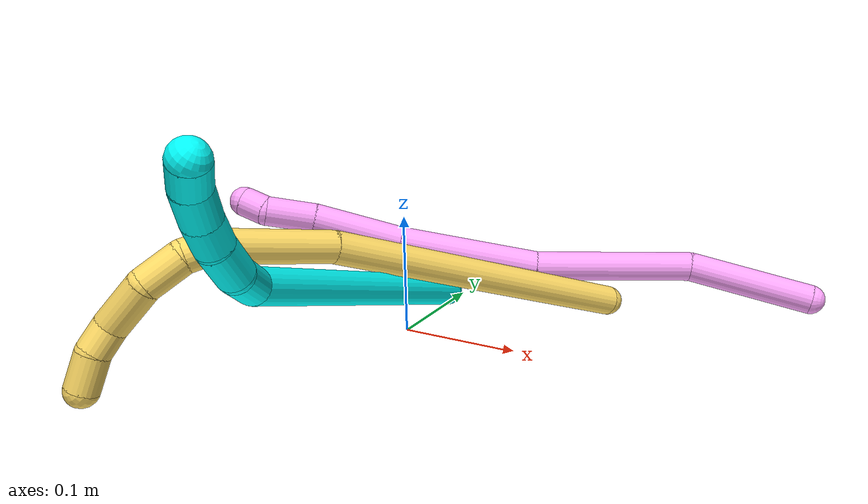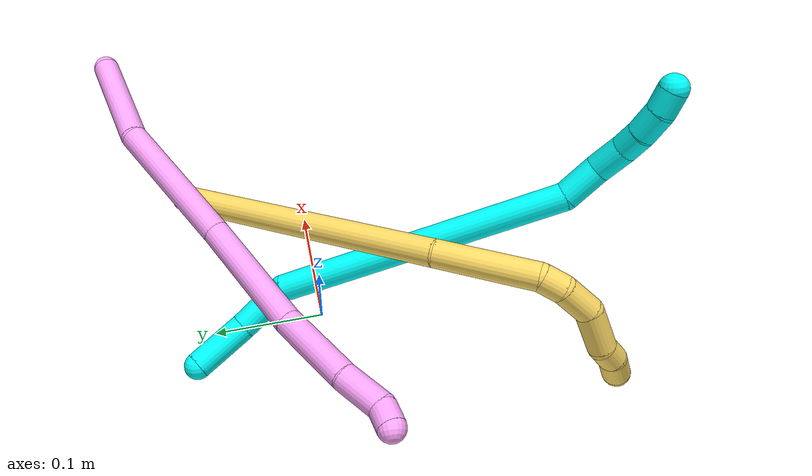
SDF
<sdf version="1.7">
 <world name="default">
  <model name="3">
   <static>0</static>
   <link name="3">
    <collision name="collision-cylinder-e_1_1_4">
     <pose>0.022848 -0.009292 0.010523 0.723326 1.01983 0.416982</pose>
     <geometry><cylinder><radius>0.0125</radius><length>0.053631</length></cylinder></geometry>
     <surface>
      <friction><ode><mu>1.16</mu><mu2>1.16</mu2><slip1>0</slip1><slip2>0</slip2></ode></friction>
      <contact><ode><kp>1e+06</kp><kd>1</kd><max_vel>0</max_vel><min_depth>0.001</min_depth></ode></contact>
     </surface>
    </collision>
    <visual name="visual-cylinder-e_1_1_4">
     <pose>0.022848 -0.009292 0.010523 0.723326 1.01983 0.416982</pose>
     <geometry><cylinder><radius>0.0125</radius><length>0.053631</length></cylinder></geometry>
     <material><ambient>0.003922 1 0.996078 1</ambient></material>
    </visual>
    <collision name="collision-cylinder-e_2_4_5">
     <pose>0.062812 -0.03068 0.035304 0.70361 0.741285 0.283381</pose>
     <geometry><cylinder><radius>0.0125</radius><length>0.050699</length></cylinder></geometry>
     <surface>
      <friction><ode><mu>1.16</mu><mu2>1.16</mu2><slip1>0</slip1><slip2>0</slip2></ode></friction>
      <contact><ode><kp>1e+06</kp><kd>1</kd><max_vel>0</max_vel><min_depth>0.001</min_depth></ode></contact>
     </surface>
    </collision>
    <visual name="visual-cylinder-e_2_4_5">
     <pose>0.062812 -0.03068 0.035304 0.70361 0.741285 0.283381</pose>
     <geometry><cylinder><radius>0.0125</radius><length>0.050699</length></cylinder></geometry>
     <material><ambient>0.003922 1 0.996078 1</ambient></material>
    </visual>
    <collision name="collision-cylinder-e_3_5_6">
     <pose>0.146593 -0.151249 0.086439 1.24308 0.526984 0.381726</pose>
     <geometry><cylinder><radius>0.0125</radius><length>0.265106</length></cylinder></geometry>
     <surface>
      <friction><ode><mu>1.16</mu><mu2>1.16</mu2><slip1>0</slip1><slip2>0</slip2></ode></friction>
      <contact><ode><kp>1e+06</kp><kd>1</kd><max_vel>0</max_vel><min_depth>0.001</min_depth></ode></contact>
     </surface>
    </collision>
    <visual name="visual-cylinder-e_3_5_6">
     <pose>0.146593 -0.151249 0.086439 1.24308 0.526984 0.381726</pose>
     <geometry><cylinder><radius>0.0125</radius><length>0.265106</length></cylinder></geometry>
     <material><ambient>0.003922 1 0.996078 1</ambient></material>
    </visual>
    <collision name="collision-cylinder-e_4_6_7">
     <pose>0.221561 -0.270539 0.13448 0.769698 0.490553 0.202089</pose>
     <geometry><cylinder><radius>0.0125</radius><length>0.035248</length></cylinder></geometry>
     <surface>
      <friction><ode><mu>1.16</mu><mu2>1.16</mu2><slip1>0</slip1><slip2>0</slip2></ode></friction>
      <contact><ode><kp>1e+06</kp><kd>1</kd><max_vel>0</max_vel><min_depth>0.001</min_depth></ode></contact>
     </surface>
    </collision>
    <visual name="visual-cylinder-e_4_6_7">
     <pose>0.221561 -0.270539 0.13448 0.769698 0.490553 0.202089</pose>
     <geometry><cylinder><radius>0.0125</radius><length>0.035248</length></cylinder></geometry>
     <material><ambient>0.003922 1 0.996078 1</ambient></material>
    </visual>
    <collision name="collision-cylinder-e_5_7_8">
     <pose>0.231677 -0.292075 0.15563 0.820693 0.123168 0.053638</pose>
     <geometry><cylinder><radius>0.0125</radius><length>0.029522</length></cylinder></geometry>
     <surface>
      <friction><ode><mu>1.16</mu><mu2>1.16</mu2><slip1>0</slip1><slip2>0</slip2></ode></friction>
      <contact><ode><kp>1e+06</kp><kd>1</kd><max_vel>0</max_vel><min_depth>0.001</min_depth></ode></contact>
     </surface>
    </collision>
    <visual name="visual-cylinder-e_5_7_8">
     <pose>0.231677 -0.292075 0.15563 0.820693 0.123168 0.053638</pose>
     <geometry><cylinder><radius>0.0125</radius><length>0.029522</length></cylinder></geometry>
     <material><ambient>0.003922 1 0.996078 1</ambient></material>
    </visual>
    <collision name="collision-cylinder-e_6_8_9">
     <pose>0.232893 -0.309692 0.173043 0.748618 -0.058849 -0.023123</pose>
     <geometry><cylinder><radius>0.0125</radius><length>0.020309</length></cylinder></geometry>
     <surface>
      <friction><ode><mu>1.16</mu><mu2>1.16</mu2><slip1>0</slip1><slip2>0</slip2></ode></friction>
      <contact><ode><kp>1e+06</kp><kd>1</kd><max_vel>0</max_vel><min_depth>0.001</min_depth></ode></contact>
     </surface>
    </collision>
    <visual name="visual-cylinder-e_6_8_9">
     <pose>0.232893 -0.309692 0.173043 0.748618 -0.058849 -0.023123</pose>
     <geometry><cylinder><radius>0.0125</radius><length>0.020309</length></cylinder></geometry>
     <material><ambient>0.003922 1 0.996078 1</ambient></material>
    </visual>
    <collision name="collision-cylinder-e_7_9_10">
     <pose>0.232578 -0.323891 0.190442 0.631836 0.022778 0.007446</pose>
     <geometry><cylinder><radius>0.0125</radius><length>0.024724</length></cylinder></geometry>
     <surface>
      <friction><ode><mu>1.16</mu><mu2>1.16</mu2><slip1>0</slip1><slip2>0</slip2></ode></friction>
      <contact><ode><kp>1e+06</kp><kd>1</kd><max_vel>0</max_vel><min_depth>0.001</min_depth></ode></contact>
     </surface>
    </collision>
    <visual name="visual-cylinder-e_7_9_10">
     <pose>0.232578 -0.323891 0.190442 0.631836 0.022778 0.007446</pose>
     <geometry><cylinder><radius>0.0125</radius><length>0.024724</length></cylinder></geometry>
     <material><ambient>0.003922 1 0.996078 1</ambient></material>
    </visual>
    <collision name="collision-cylinder-e_8_10_2">
     <pose>0.23385 -0.335488 0.209813 0.428909 0.095552 0.020827</pose>
     <geometry><cylinder><radius>0.0125</radius><length>0.020762</length></cylinder></geometry>
     <surface>
      <friction><ode><mu>1.16</mu><mu2>1.16</mu2><slip1>0</slip1><slip2>0</slip2></ode></friction>
      <contact><ode><kp>1e+06</kp><kd>1</kd><max_vel>0</max_vel><min_depth>0.001</min_depth></ode></contact>
     </surface>
    </collision>
    <visual name="visual-cylinder-e_8_10_2">
     <pose>0.23385 -0.335488 0.209813 0.428909 0.095552 0.020827</pose>
     <geometry><cylinder><radius>0.0125</radius><length>0.020762</length></cylinder></geometry>
     <material><ambient>0.003922 1 0.996078 1</ambient></material>
    </visual>
    <collision name="collision-sphere-2">
     <pose>0.23484 -0.339785 0.21921 0 -0 0</pose>
     <geometry><sphere><radius>0.0125</radius></sphere></geometry>
     <surface>
      <friction><ode><mu>1.16</mu><mu2>1.16</mu2><slip1>0</slip1><slip2>0</slip2></ode></friction>
      <contact><ode><kp>1e+06</kp><kd>1</kd><max_vel>0</max_vel><min_depth>0.001</min_depth></ode></contact>
     </surface>
    </collision>
    <visual name="visual-sphere-2">
     <pose>0.23484 -0.339785 0.21921 0 -0 0</pose>
     <geometry><sphere><radius>0.0125</radius></sphere></geometry>
     <material><ambient>0.003922 1 0.996078 1</ambient></material>
    </visual>
    <collision name="collision-sphere-10">
     <pose>0.232859 -0.33119 0.200415 0 -0 0</pose>
     <geometry><sphere><radius>0.0125</radius></sphere></geometry>
     <surface>
      <friction><ode><mu>1.16</mu><mu2>1.16</mu2><slip1>0</slip1><slip2>0</slip2></ode></friction>
      <contact><ode><kp>1e+06</kp><kd>1</kd><max_vel>0</max_vel><min_depth>0.001</min_depth></ode></contact>
     </surface>
    </collision>
    <visual name="visual-sphere-10">
     <pose>0.232859 -0.33119 0.200415 0 -0 0</pose>
     <geometry><sphere><radius>0.0125</radius></sphere></geometry>
     <material><ambient>0.003922 1 0.996078 1</ambient></material>
    </visual>
    <collision name="collision-sphere-9">
     <pose>0.232296 -0.316591 0.18047 0 -0 0</pose>
     <geometry><sphere><radius>0.0125</radius></sphere></geometry>
     <surface>
      <friction><ode><mu>1.16</mu><mu2>1.16</mu2><slip1>0</slip1><slip2>0</slip2></ode></friction>
      <contact><ode><kp>1e+06</kp><kd>1</kd><max_vel>0</max_vel><min_depth>0.001</min_depth></ode></contact>
     </surface>
    </collision>
    <visual name="visual-sphere-9">
     <pose>0.232296 -0.316591 0.18047 0 -0 0</pose>
     <geometry><sphere><radius>0.0125</radius></sphere></geometry>
     <material><ambient>0.003922 1 0.996078 1</ambient></material>
    </visual>
    <collision name="collision-sphere-4">
     <pose>0.045695 -0.018583 0.021046 0 -0 0</pose>
     <geometry><sphere><radius>0.0125</radius></sphere></geometry>
     <surface>
      <friction><ode><mu>1.16</mu><mu2>1.16</mu2><slip1>0</slip1><slip2>0</slip2></ode></friction>
      <contact><ode><kp>1e+06</kp><kd>1</kd><max_vel>0</max_vel><min_depth>0.001</min_depth></ode></contact>
     </surface>
    </collision>
    <visual name="visual-sphere-4">
     <pose>0.045695 -0.018583 0.021046 0 -0 0</pose>
     <geometry><sphere><radius>0.0125</radius></sphere></geometry>
     <material><ambient>0.003922 1 0.996078 1</ambient></material>
    </visual>
    <collision name="collision-sphere-1">
     <geometry><sphere><radius>0.0125</radius></sphere></geometry>
     <surface>
      <friction><ode><mu>1.16</mu><mu2>1.16</mu2><slip1>0</slip1><slip2>0</slip2></ode></friction>
      <contact><ode><kp>1e+06</kp><kd>1</kd><max_vel>0</max_vel><min_depth>0.001</min_depth></ode></contact>
     </surface>
    </collision>
    <visual name="visual-sphere-1">
     <geometry><sphere><radius>0.0125</radius></sphere></geometry>
     <material><ambient>0.003922 1 0.996078 1</ambient></material>
    </visual>
    <collision name="collision-sphere-8">
     <pose>0.233491 -0.302792 0.165616 0 -0 0</pose>
     <geometry><sphere><radius>0.0125</radius></sphere></geometry>
     <surface>
      <friction><ode><mu>1.16</mu><mu2>1.16</mu2><slip1>0</slip1><slip2>0</slip2></ode></friction>
      <contact><ode><kp>1e+06</kp><kd>1</kd><max_vel>0</max_vel><min_depth>0.001</min_depth></ode></contact>
     </surface>
    </collision>
    <visual name="visual-sphere-8">
     <pose>0.233491 -0.302792 0.165616 0 -0 0</pose>
     <geometry><sphere><radius>0.0125</radius></sphere></geometry>
     <material><ambient>0.003922 1 0.996078 1</ambient></material>
    </visual>
    <collision name="collision-sphere-5">
     <pose>0.079929 -0.042777 0.049561 0 -0 0</pose>
     <geometry><sphere><radius>0.0125</radius></sphere></geometry>
     <surface>
      <friction><ode><mu>1.16</mu><mu2>1.16</mu2><slip1>0</slip1><slip2>0</slip2></ode></friction>
      <contact><ode><kp>1e+06</kp><kd>1</kd><max_vel>0</max_vel><min_depth>0.001</min_depth></ode></contact>
     </surface>
    </collision>
    <visual name="visual-sphere-5">
     <pose>0.079929 -0.042777 0.049561 0 -0 0</pose>
     <geometry><sphere><radius>0.0125</radius></sphere></geometry>
     <material><ambient>0.003922 1 0.996078 1</ambient></material>
    </visual>
    <collision name="collision-sphere-6">
     <pose>0.213258 -0.259721 0.123316 0 -0 0</pose>
     <geometry><sphere><radius>0.0125</radius></sphere></geometry>
     <surface>
      <friction><ode><mu>1.16</mu><mu2>1.16</mu2><slip1>0</slip1><slip2>0</slip2></ode></friction>
      <contact><ode><kp>1e+06</kp><kd>1</kd><max_vel>0</max_vel><min_depth>0.001</min_depth></ode></contact>
     </surface>
    </collision>
    <visual name="visual-sphere-6">
     <pose>0.213258 -0.259721 0.123316 0 -0 0</pose>
     <geometry><sphere><radius>0.0125</radius></sphere></geometry>
     <material><ambient>0.003922 1 0.996078 1</ambient></material>
    </visual>
    <collision name="collision-sphere-7">
     <pose>0.229864 -0.281357 0.145644 0 -0 0</pose>
     <geometry><sphere><radius>0.0125</radius></sphere></geometry>
     <surface>
      <friction><ode><mu>1.16</mu><mu2>1.16</mu2><slip1>0</slip1><slip2>0</slip2></ode></friction>
      <contact><ode><kp>1e+06</kp><kd>1</kd><max_vel>0</max_vel><min_depth>0.001</min_depth></ode></contact>
     </surface>
    </collision>
    <visual name="visual-sphere-7">
     <pose>0.229864 -0.281357 0.145644 0 -0 0</pose>
     <geometry><sphere><radius>0.0125</radius></sphere></geometry>
     <material><ambient>0.003922 1 0.996078 1</ambient></material>
    </visual>
    <inertial>
     <pose>0.146514 -0.163144 0.094366 0 -0 0</pose>
     <mass>0.5</mass>
     <inertia>
      <ixx>0.001811</ixx>
      <ixy>0</ixy>
      <ixz>0</ixz>
      <iyy>0.001263</iyy>
      <iyz>0</iyz>
      <izz>0.000506</izz>
     </inertia>
    </inertial>
   </link>
   <pose>-0.030844 0.118839 0.011269 -0.517674 0.499494 -0.90212</pose>
  </model>
  <model name="4">
   <static>0</static>
   <link name="4">
    <collision name="collision-cylinder-e_1_1_4">
     <pose>-0.018813 -0.005576 -0.049477 3.02937 -0.361262 -2.54482</pose>
     <geometry><cylinder><radius>0.0125</radius><length>0.106451</length></cylinder></geometry>
     <surface>
      <friction><ode><mu>1.16</mu><mu2>1.16</mu2><slip1>0</slip1><slip2>0</slip2></ode></friction>
      <contact><ode><kp>1e+06</kp><kd>1</kd><max_vel>0</max_vel><min_depth>0.001</min_depth></ode></contact>
     </surface>
    </collision>
    <visual name="visual-cylinder-e_1_1_4">
     <pose>-0.018813 -0.005576 -0.049477 3.02937 -0.361262 -2.54482</pose>
     <geometry><cylinder><radius>0.0125</radius><length>0.106451</length></cylinder></geometry>
     <material><ambient>1 0.65098 0.996078 1</ambient></material>
    </visual>
    <collision name="collision-cylinder-e_2_4_5">
     <pose>-0.062071 -0.039736 -0.155614 2.67436 -0.367675 -1.32657</pose>
     <geometry><cylinder><radius>0.0125</radius><length>0.136016</length></cylinder></geometry>
     <surface>
      <friction><ode><mu>1.16</mu><mu2>1.16</mu2><slip1>0</slip1><slip2>0</slip2></ode></friction>
      <contact><ode><kp>1e+06</kp><kd>1</kd><max_vel>0</max_vel><min_depth>0.001</min_depth></ode></contact>
     </surface>
    </collision>
    <visual name="visual-cylinder-e_2_4_5">
     <pose>-0.062071 -0.039736 -0.155614 2.67436 -0.367675 -1.32657</pose>
     <geometry><cylinder><radius>0.0125</radius><length>0.136016</length></cylinder></geometry>
     <material><ambient>1 0.65098 0.996078 1</ambient></material>
    </visual>
    <collision name="collision-cylinder-e_3_5_6">
     <pose>-0.114018 -0.084919 -0.263114 2.82601 -0.474976 -1.97856</pose>
     <geometry><cylinder><radius>0.0125</radius><length>0.120274</length></cylinder></geometry>
     <surface>
      <friction><ode><mu>1.16</mu><mu2>1.16</mu2><slip1>0</slip1><slip2>0</slip2></ode></friction>
      <contact><ode><kp>1e+06</kp><kd>1</kd><max_vel>0</max_vel><min_depth>0.001</min_depth></ode></contact>
     </surface>
    </collision>
    <visual name="visual-cylinder-e_3_5_6">
     <pose>-0.114018 -0.084919 -0.263114 2.82601 -0.474976 -1.97856</pose>
     <geometry><cylinder><radius>0.0125</radius><length>0.120274</length></cylinder></geometry>
     <material><ambient>1 0.65098 0.996078 1</ambient></material>
    </visual>
    <collision name="collision-cylinder-e_4_6_7">
     <pose>-0.16318 -0.110986 -0.343532 2.83181 -0.609004 -2.21937</pose>
     <geometry><cylinder><radius>0.0125</radius><length>0.07573</length></cylinder></geometry>
     <surface>
      <friction><ode><mu>1.16</mu><mu2>1.16</mu2><slip1>0</slip1><slip2>0</slip2></ode></friction>
      <contact><ode><kp>1e+06</kp><kd>1</kd><max_vel>0</max_vel><min_depth>0.001</min_depth></ode></contact>
     </surface>
    </collision>
    <visual name="visual-cylinder-e_4_6_7">
     <pose>-0.16318 -0.110986 -0.343532 2.83181 -0.609004 -2.21937</pose>
     <geometry><cylinder><radius>0.0125</radius><length>0.07573</length></cylinder></geometry>
     <material><ambient>1 0.65098 0.996078 1</ambient></material>
    </visual>
    <collision name="collision-cylinder-e_5_7_8">
     <pose>-0.196515 -0.128441 -0.387974 2.64843 -0.605258 -1.78459</pose>
     <geometry><cylinder><radius>0.0125</radius><length>0.041035</length></cylinder></geometry>
     <surface>
      <friction><ode><mu>1.16</mu><mu2>1.16</mu2><slip1>0</slip1><slip2>0</slip2></ode></friction>
      <contact><ode><kp>1e+06</kp><kd>1</kd><max_vel>0</max_vel><min_depth>0.001</min_depth></ode></contact>
     </surface>
    </collision>
    <visual name="visual-cylinder-e_5_7_8">
     <pose>-0.196515 -0.128441 -0.387974 2.64843 -0.605258 -1.78459</pose>
     <geometry><cylinder><radius>0.0125</radius><length>0.041035</length></cylinder></geometry>
     <material><ambient>1 0.65098 0.996078 1</ambient></material>
    </visual>
    <collision name="collision-cylinder-e_6_8_2">
     <pose>-0.212403 -0.13627 -0.412175 -3.12454 -0.423852 3.06237</pose>
     <geometry><cylinder><radius>0.0125</radius><length>0.020493</length></cylinder></geometry>
     <surface>
      <friction><ode><mu>1.16</mu><mu2>1.16</mu2><slip1>0</slip1><slip2>0</slip2></ode></friction>
      <contact><ode><kp>1e+06</kp><kd>1</kd><max_vel>0</max_vel><min_depth>0.001</min_depth></ode></contact>
     </surface>
    </collision>
    <visual name="visual-cylinder-e_6_8_2">
     <pose>-0.212403 -0.13627 -0.412175 -3.12454 -0.423852 3.06237</pose>
     <geometry><cylinder><radius>0.0125</radius><length>0.020493</length></cylinder></geometry>
     <material><ambient>1 0.65098 0.996078 1</ambient></material>
    </visual>
    <collision name="collision-sphere-2">
     <pose>-0.216617 -0.136111 -0.421513 0 -0 0</pose>
     <geometry><sphere><radius>0.0125</radius></sphere></geometry>
     <surface>
      <friction><ode><mu>1.16</mu><mu2>1.16</mu2><slip1>0</slip1><slip2>0</slip2></ode></friction>
      <contact><ode><kp>1e+06</kp><kd>1</kd><max_vel>0</max_vel><min_depth>0.001</min_depth></ode></contact>
     </surface>
    </collision>
    <visual name="visual-sphere-2">
     <pose>-0.216617 -0.136111 -0.421513 0 -0 0</pose>
     <geometry><sphere><radius>0.0125</radius></sphere></geometry>
     <material><ambient>1 0.65098 0.996078 1</ambient></material>
    </visual>
    <collision name="collision-sphere-4">
     <pose>-0.037626 -0.011151 -0.098953 0 -0 0</pose>
     <geometry><sphere><radius>0.0125</radius></sphere></geometry>
     <surface>
      <friction><ode><mu>1.16</mu><mu2>1.16</mu2><slip1>0</slip1><slip2>0</slip2></ode></friction>
      <contact><ode><kp>1e+06</kp><kd>1</kd><max_vel>0</max_vel><min_depth>0.001</min_depth></ode></contact>
     </surface>
    </collision>
    <visual name="visual-sphere-4">
     <pose>-0.037626 -0.011151 -0.098953 0 -0 0</pose>
     <geometry><sphere><radius>0.0125</radius></sphere></geometry>
     <material><ambient>1 0.65098 0.996078 1</ambient></material>
    </visual>
    <collision name="collision-sphere-1">
     <geometry><sphere><radius>0.0125</radius></sphere></geometry>
     <surface>
      <friction><ode><mu>1.16</mu><mu2>1.16</mu2><slip1>0</slip1><slip2>0</slip2></ode></friction>
      <contact><ode><kp>1e+06</kp><kd>1</kd><max_vel>0</max_vel><min_depth>0.001</min_depth></ode></contact>
     </surface>
    </collision>
    <visual name="visual-sphere-1">
     <geometry><sphere><radius>0.0125</radius></sphere></geometry>
     <material><ambient>1 0.65098 0.996078 1</ambient></material>
    </visual>
    <collision name="collision-sphere-8">
     <pose>-0.208189 -0.136429 -0.402836 0 -0 0</pose>
     <geometry><sphere><radius>0.0125</radius></sphere></geometry>
     <surface>
      <friction><ode><mu>1.16</mu><mu2>1.16</mu2><slip1>0</slip1><slip2>0</slip2></ode></friction>
      <contact><ode><kp>1e+06</kp><kd>1</kd><max_vel>0</max_vel><min_depth>0.001</min_depth></ode></contact>
     </surface>
    </collision>
    <visual name="visual-sphere-8">
     <pose>-0.208189 -0.136429 -0.402836 0 -0 0</pose>
     <geometry><sphere><radius>0.0125</radius></sphere></geometry>
     <material><ambient>1 0.65098 0.996078 1</ambient></material>
    </visual>
    <collision name="collision-sphere-5">
     <pose>-0.086516 -0.068321 -0.212275 0 -0 0</pose>
     <geometry><sphere><radius>0.0125</radius></sphere></geometry>
     <surface>
      <friction><ode><mu>1.16</mu><mu2>1.16</mu2><slip1>0</slip1><slip2>0</slip2></ode></friction>
      <contact><ode><kp>1e+06</kp><kd>1</kd><max_vel>0</max_vel><min_depth>0.001</min_depth></ode></contact>
     </surface>
    </collision>
    <visual name="visual-sphere-5">
     <pose>-0.086516 -0.068321 -0.212275 0 -0 0</pose>
     <geometry><sphere><radius>0.0125</radius></sphere></geometry>
     <material><ambient>1 0.65098 0.996078 1</ambient></material>
    </visual>
    <collision name="collision-sphere-6">
     <pose>-0.14152 -0.101518 -0.313953 0 -0 0</pose>
     <geometry><sphere><radius>0.0125</radius></sphere></geometry>
     <surface>
      <friction><ode><mu>1.16</mu><mu2>1.16</mu2><slip1>0</slip1><slip2>0</slip2></ode></friction>
      <contact><ode><kp>1e+06</kp><kd>1</kd><max_vel>0</max_vel><min_depth>0.001</min_depth></ode></contact>
     </surface>
    </collision>
    <visual name="visual-sphere-6">
     <pose>-0.14152 -0.101518 -0.313953 0 -0 0</pose>
     <geometry><sphere><radius>0.0125</radius></sphere></geometry>
     <material><ambient>1 0.65098 0.996078 1</ambient></material>
    </visual>
    <collision name="collision-sphere-7">
     <pose>-0.184841 -0.120454 -0.373112 0 -0 0</pose>
     <geometry><sphere><radius>0.0125</radius></sphere></geometry>
     <surface>
      <friction><ode><mu>1.16</mu><mu2>1.16</mu2><slip1>0</slip1><slip2>0</slip2></ode></friction>
      <contact><ode><kp>1e+06</kp><kd>1</kd><max_vel>0</max_vel><min_depth>0.001</min_depth></ode></contact>
     </surface>
    </collision>
    <visual name="visual-sphere-7">
     <pose>-0.184841 -0.120454 -0.373112 0 -0 0</pose>
     <geometry><sphere><radius>0.0125</radius></sphere></geometry>
     <material><ambient>1 0.65098 0.996078 1</ambient></material>
    </visual>
    <inertial>
     <pose>-0.097866 -0.06536 -0.216924 0 -0 0</pose>
     <mass>0.5</mass>
     <inertia>
      <ixx>-0.000528</ixx>
      <ixy>0</ixy>
      <ixz>0</ixz>
      <iyy>-0.000229</iyy>
      <iyz>0</iyz>
      <izz>0.000332</izz>
     </inertia>
    </inertial>
   </link>
   <pose>0.301524 0.175116 0.01976 1.55371 0.916633 1.48454</pose>
  </model>
  <model name="5">
   <static>0</static>
   <link name="5">
    <collision name="collision-cylinder-e_1_1_4">
     <pose>-0.046607 -0.03512 0.120534 0.283521 -0.355463 -0.051261</pose>
     <geometry><cylinder><radius>0.0125</radius><length>0.267837</length></cylinder></geometry>
     <surface>
      <friction><ode><mu>1.16</mu><mu2>1.16</mu2><slip1>0</slip1><slip2>0</slip2></ode></friction>
      <contact><ode><kp>1e+06</kp><kd>1</kd><max_vel>0</max_vel><min_depth>0.001</min_depth></ode></contact>
     </surface>
    </collision>
    <visual name="visual-cylinder-e_1_1_4">
     <pose>-0.046607 -0.03512 0.120534 0.283521 -0.355463 -0.051261</pose>
     <geometry><cylinder><radius>0.0125</radius><length>0.267837</length></cylinder></geometry>
     <material><ambient>1 0.858824 0.4 1</ambient></material>
    </visual>
    <collision name="collision-cylinder-e_2_4_5">
     <pose>-0.106912 -0.089358 0.27968 0.459748 -0.307835 -0.072579</pose>
     <geometry><cylinder><radius>0.0125</radius><length>0.09042</length></cylinder></geometry>
     <surface>
      <friction><ode><mu>1.16</mu><mu2>1.16</mu2><slip1>0</slip1><slip2>0</slip2></ode></friction>
      <contact><ode><kp>1e+06</kp><kd>1</kd><max_vel>0</max_vel><min_depth>0.001</min_depth></ode></contact>
     </surface>
    </collision>
    <visual name="visual-cylinder-e_2_4_5">
     <pose>-0.106912 -0.089358 0.27968 0.459748 -0.307835 -0.072579</pose>
     <geometry><cylinder><radius>0.0125</radius><length>0.09042</length></cylinder></geometry>
     <material><ambient>1 0.858824 0.4 1</ambient></material>
    </visual>
    <collision name="collision-cylinder-e_3_5_6">
     <pose>-0.12507 -0.115882 0.324301 0.889124 -0.437356 -0.210941</pose>
     <geometry><cylinder><radius>0.0125</radius><length>0.021057</length></cylinder></geometry>
     <surface>
      <friction><ode><mu>1.16</mu><mu2>1.16</mu2><slip1>0</slip1><slip2>0</slip2></ode></friction>
      <contact><ode><kp>1e+06</kp><kd>1</kd><max_vel>0</max_vel><min_depth>0.001</min_depth></ode></contact>
     </surface>
    </collision>
    <visual name="visual-cylinder-e_3_5_6">
     <pose>-0.12507 -0.115882 0.324301 0.889124 -0.437356 -0.210941</pose>
     <geometry><cylinder><radius>0.0125</radius><length>0.021057</length></cylinder></geometry>
     <material><ambient>1 0.858824 0.4 1</ambient></material>
    </visual>
    <collision name="collision-cylinder-e_4_6_7">
     <pose>-0.136125 -0.136763 0.334561 1.26519 -0.436764 -0.322553</pose>
     <geometry><cylinder><radius>0.0125</radius><length>0.031187</length></cylinder></geometry>
     <surface>
      <friction><ode><mu>1.16</mu><mu2>1.16</mu2><slip1>0</slip1><slip2>0</slip2></ode></friction>
      <contact><ode><kp>1e+06</kp><kd>1</kd><max_vel>0</max_vel><min_depth>0.001</min_depth></ode></contact>
     </surface>
    </collision>
    <visual name="visual-cylinder-e_4_6_7">
     <pose>-0.136125 -0.136763 0.334561 1.26519 -0.436764 -0.322553</pose>
     <geometry><cylinder><radius>0.0125</radius><length>0.031187</length></cylinder></geometry>
     <material><ambient>1 0.858824 0.4 1</ambient></material>
    </visual>
    <collision name="collision-cylinder-e_5_7_8">
     <pose>-0.153957 -0.166474 0.335974 1.74388 -0.598311 -0.703496</pose>
     <geometry><cylinder><radius>0.0125</radius><length>0.039895</length></cylinder></geometry>
     <surface>
      <friction><ode><mu>1.16</mu><mu2>1.16</mu2><slip1>0</slip1><slip2>0</slip2></ode></friction>
      <contact><ode><kp>1e+06</kp><kd>1</kd><max_vel>0</max_vel><min_depth>0.001</min_depth></ode></contact>
     </surface>
    </collision>
    <visual name="visual-cylinder-e_5_7_8">
     <pose>-0.153957 -0.166474 0.335974 1.74388 -0.598311 -0.703496</pose>
     <geometry><cylinder><radius>0.0125</radius><length>0.039895</length></cylinder></geometry>
     <material><ambient>1 0.858824 0.4 1</ambient></material>
    </visual>
    <collision name="collision-cylinder-e_6_8_9">
     <pose>-0.167891 -0.19302 0.333015 1.58249 -0.255966 -0.258944</pose>
     <geometry><cylinder><radius>0.0125</radius><length>0.021316</length></cylinder></geometry>
     <surface>
      <friction><ode><mu>1.16</mu><mu2>1.16</mu2><slip1>0</slip1><slip2>0</slip2></ode></friction>
      <contact><ode><kp>1e+06</kp><kd>1</kd><max_vel>0</max_vel><min_depth>0.001</min_depth></ode></contact>
     </surface>
    </collision>
    <visual name="visual-cylinder-e_6_8_9">
     <pose>-0.167891 -0.19302 0.333015 1.58249 -0.255966 -0.258944</pose>
     <geometry><cylinder><radius>0.0125</radius><length>0.021316</length></cylinder></geometry>
     <material><ambient>1 0.858824 0.4 1</ambient></material>
    </visual>
    <collision name="collision-cylinder-e_7_9_2">
     <pose>-0.173557 -0.216474 0.328595 1.88687 -0.211372 -0.290544</pose>
     <geometry><cylinder><radius>0.0125</radius><length>0.028288</length></cylinder></geometry>
     <surface>
      <friction><ode><mu>1.16</mu><mu2>1.16</mu2><slip1>0</slip1><slip2>0</slip2></ode></friction>
      <contact><ode><kp>1e+06</kp><kd>1</kd><max_vel>0</max_vel><min_depth>0.001</min_depth></ode></contact>
     </surface>
    </collision>
    <visual name="visual-cylinder-e_7_9_2">
     <pose>-0.173557 -0.216474 0.328595 1.88687 -0.211372 -0.290544</pose>
     <geometry><cylinder><radius>0.0125</radius><length>0.028288</length></cylinder></geometry>
     <material><ambient>1 0.858824 0.4 1</ambient></material>
    </visual>
    <collision name="collision-sphere-2">
     <pose>-0.176524 -0.229618 0.324297 0 -0 0</pose>
     <geometry><sphere><radius>0.0125</radius></sphere></geometry>
     <surface>
      <friction><ode><mu>1.16</mu><mu2>1.16</mu2><slip1>0</slip1><slip2>0</slip2></ode></friction>
      <contact><ode><kp>1e+06</kp><kd>1</kd><max_vel>0</max_vel><min_depth>0.001</min_depth></ode></contact>
     </surface>
    </collision>
    <visual name="visual-sphere-2">
     <pose>-0.176524 -0.229618 0.324297 0 -0 0</pose>
     <geometry><sphere><radius>0.0125</radius></sphere></geometry>
     <material><ambient>1 0.858824 0.4 1</ambient></material>
    </visual>
    <collision name="collision-sphere-9">
     <pose>-0.170589 -0.20333 0.332894 0 -0 0</pose>
     <geometry><sphere><radius>0.0125</radius></sphere></geometry>
     <surface>
      <friction><ode><mu>1.16</mu><mu2>1.16</mu2><slip1>0</slip1><slip2>0</slip2></ode></friction>
      <contact><ode><kp>1e+06</kp><kd>1</kd><max_vel>0</max_vel><min_depth>0.001</min_depth></ode></contact>
     </surface>
    </collision>
    <visual name="visual-sphere-9">
     <pose>-0.170589 -0.20333 0.332894 0 -0 0</pose>
     <geometry><sphere><radius>0.0125</radius></sphere></geometry>
     <material><ambient>1 0.858824 0.4 1</ambient></material>
    </visual>
    <collision name="collision-sphere-4">
     <pose>-0.093214 -0.07024 0.241069 0 -0 0</pose>
     <geometry><sphere><radius>0.0125</radius></sphere></geometry>
     <surface>
      <friction><ode><mu>1.16</mu><mu2>1.16</mu2><slip1>0</slip1><slip2>0</slip2></ode></friction>
      <contact><ode><kp>1e+06</kp><kd>1</kd><max_vel>0</max_vel><min_depth>0.001</min_depth></ode></contact>
     </surface>
    </collision>
    <visual name="visual-sphere-4">
     <pose>-0.093214 -0.07024 0.241069 0 -0 0</pose>
     <geometry><sphere><radius>0.0125</radius></sphere></geometry>
     <material><ambient>1 0.858824 0.4 1</ambient></material>
    </visual>
    <collision name="collision-sphere-1">
     <geometry><sphere><radius>0.0125</radius></sphere></geometry>
     <surface>
      <friction><ode><mu>1.16</mu><mu2>1.16</mu2><slip1>0</slip1><slip2>0</slip2></ode></friction>
      <contact><ode><kp>1e+06</kp><kd>1</kd><max_vel>0</max_vel><min_depth>0.001</min_depth></ode></contact>
     </surface>
    </collision>
    <visual name="visual-sphere-1">
     <geometry><sphere><radius>0.0125</radius></sphere></geometry>
     <material><ambient>1 0.858824 0.4 1</ambient></material>
    </visual>
    <collision name="collision-sphere-8">
     <pose>-0.165192 -0.18271 0.333135 0 -0 0</pose>
     <geometry><sphere><radius>0.0125</radius></sphere></geometry>
     <surface>
      <friction><ode><mu>1.16</mu><mu2>1.16</mu2><slip1>0</slip1><slip2>0</slip2></ode></friction>
      <contact><ode><kp>1e+06</kp><kd>1</kd><max_vel>0</max_vel><min_depth>0.001</min_depth></ode></contact>
     </surface>
    </collision>
    <visual name="visual-sphere-8">
     <pose>-0.165192 -0.18271 0.333135 0 -0 0</pose>
     <geometry><sphere><radius>0.0125</radius></sphere></geometry>
     <material><ambient>1 0.858824 0.4 1</ambient></material>
    </visual>
    <collision name="collision-sphere-5">
     <pose>-0.120611 -0.108476 0.318291 0 -0 0</pose>
     <geometry><sphere><radius>0.0125</radius></sphere></geometry>
     <surface>
      <friction><ode><mu>1.16</mu><mu2>1.16</mu2><slip1>0</slip1><slip2>0</slip2></ode></friction>
      <contact><ode><kp>1e+06</kp><kd>1</kd><max_vel>0</max_vel><min_depth>0.001</min_depth></ode></contact>
     </surface>
    </collision>
    <visual name="visual-sphere-5">
     <pose>-0.120611 -0.108476 0.318291 0 -0 0</pose>
     <geometry><sphere><radius>0.0125</radius></sphere></geometry>
     <material><ambient>1 0.858824 0.4 1</ambient></material>
    </visual>
    <collision name="collision-sphere-6">
     <pose>-0.129529 -0.123288 0.33031 0 -0 0</pose>
     <geometry><sphere><radius>0.0125</radius></sphere></geometry>
     <surface>
      <friction><ode><mu>1.16</mu><mu2>1.16</mu2><slip1>0</slip1><slip2>0</slip2></ode></friction>
      <contact><ode><kp>1e+06</kp><kd>1</kd><max_vel>0</max_vel><min_depth>0.001</min_depth></ode></contact>
     </surface>
    </collision>
    <visual name="visual-sphere-6">
     <pose>-0.129529 -0.123288 0.33031 0 -0 0</pose>
     <geometry><sphere><radius>0.0125</radius></sphere></geometry>
     <material><ambient>1 0.858824 0.4 1</ambient></material>
    </visual>
    <collision name="collision-sphere-7">
     <pose>-0.142722 -0.150238 0.338812 0 -0 0</pose>
     <geometry><sphere><radius>0.0125</radius></sphere></geometry>
     <surface>
      <friction><ode><mu>1.16</mu><mu2>1.16</mu2><slip1>0</slip1><slip2>0</slip2></ode></friction>
      <contact><ode><kp>1e+06</kp><kd>1</kd><max_vel>0</max_vel><min_depth>0.001</min_depth></ode></contact>
     </surface>
    </collision>
    <visual name="visual-sphere-7">
     <pose>-0.142722 -0.150238 0.338812 0 -0 0</pose>
     <geometry><sphere><radius>0.0125</radius></sphere></geometry>
     <material><ambient>1 0.858824 0.4 1</ambient></material>
    </visual>
    <inertial>
     <pose>-0.087319 -0.082142 0.209265 0 -0 0</pose>
     <mass>0.5</mass>
     <inertia>
      <ixx>0.001482</ixx>
      <ixy>0</ixy>
      <ixz>0</ixz>
      <iyy>0.00151</iyy>
      <iyz>0</iyz>
      <izz>0.001078</izz>
     </inertia>
    </inertial>
   </link>
   <pose>0.139096 0.111541 0.012703 0.904441 -0.035859 -0.189534</pose>
  </model>
 </world>
</sdf>
